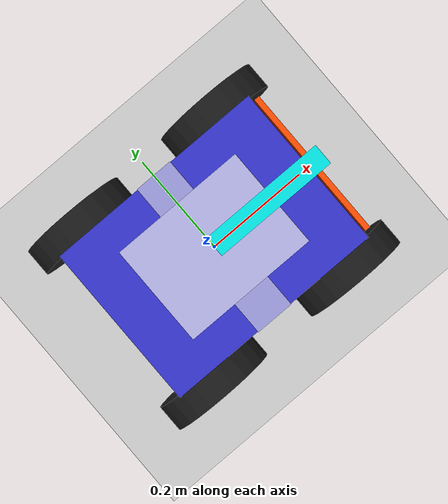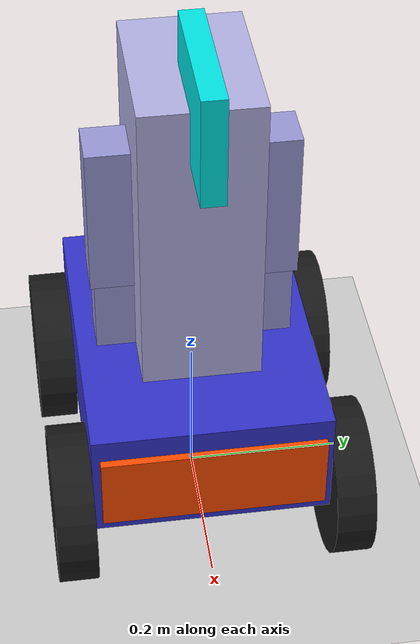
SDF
<?xml version="1.0" ?>
<sdf version="1.8">
  <world name="demo">
    <plugin filename="gz-sim-contact-system" name="gz::sim::systems::Contact"></plugin>
    <plugin
      filename="gz-sim-physics-system"
      name="gz::sim::systems::Physics">
    </plugin>
    <plugin
      filename="gz-sim-sensors-system"
      name="gz::sim::systems::Sensors">
      <render_engine>ogre</render_engine>
    </plugin>
    <plugin
      filename="gz-sim-scene-broadcaster-system"
      name="gz::sim::systems::SceneBroadcaster">
    </plugin>
    <plugin
      filename="gz-sim-user-commands-system"
      name="gz::sim::systems::UserCommands">
    </plugin>

    <light name="sun" type="directional">
      <cast_shadows>true</cast_shadows>
      <pose>0 0 10 0 0 0</pose>
      <diffuse>0.8 0.8 0.8 1</diffuse>
      <specular>0.2 0.2 0.2 1</specular>
      <attenuation>
        <range>1000</range>
        <constant>0.9</constant>
        <linear>0.01</linear>
        <quadratic>0.001</quadratic>
      </attenuation>
      <direction>-0.5 0.1 -0.9</direction>
    </light>

    <model name="ground_plane">
      <static>true</static>
      <link name="link">
        <collision name="collision">
          <geometry>
            <plane>
              <normal>0 0 1</normal>
              <size>100 100</size>
            </plane>
          </geometry>
        </collision>
        <visual name="visual">
          <geometry>
            <plane>
              <normal>0 0 1</normal>
              <size>100 100</size>
            </plane>
          </geometry>
          <material>
            <ambient>0.8 0.8 0.8 1</ambient>
            <diffuse>0.8 0.8 0.8 1</diffuse>
            <specular>0.8 0.8 0.8 1</specular>
          </material>
        </visual>
      </link>
    </model>

    <model name="diff_drive">
      <self_collide>false</self_collide>
      <pose>0 0 0 0 0 0</pose>
      <include merge="true">
        <uri>package://ros_gz_example_description/models/diff_drive</uri>
      </include>

      <plugin
        filename="gz-sim-joint-state-publisher-system"
        name="gz::sim::systems::JointStatePublisher">
      </plugin>

      <plugin
        filename="gz-sim-pose-publisher-system"
        name="gz::sim::systems::PosePublisher">
        <publish_link_pose>true</publish_link_pose>
        <use_pose_vector_msg>true</use_pose_vector_msg>
        <static_publisher>true</static_publisher>
        <static_update_frequency>1</static_update_frequency>
      </plugin>

      <plugin
        filename="gz-sim-odometry-publisher-system"
        name="gz::sim::systems::OdometryPublisher">
        <odom_frame>diff_drive/odom</odom_frame>
        <robot_base_frame>diff_drive</robot_base_frame>
      </plugin>
    </model>

  </world>
</sdf>

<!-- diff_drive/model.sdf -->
<sdf version="1.8">
  <model name="diff_drive">
  <self_collide>false</self_collide>

    <link name="chassis">
      <pose>0 0 0.175 0 0 0</pose>
      <inertial>
        <mass>5.0</mass>
        <inertia>
          <ixx>0.046875</ixx><ixy>0</ixy><ixz>0</ixz>
          <iyy>0.076041</iyy><iyz>0</iyz>
          <izz>0.104166</izz>
        </inertia>
      </inertial>
      <visual name="visual_chassis">
        <geometry><box><size>0.4 0.3 0.15</size></box></geometry>
        <material>
          <ambient>0.2 0.2 0.8 1</ambient>
          <diffuse>0.2 0.2 0.8 1</diffuse>
          <specular>0.3 0.3 0.3 1</specular>
        </material>
      </visual>
      <collision name="collision_chassis">
        <geometry><box><size>0.4 0.3 0.15</size></box></geometry>
        <surface>
          <friction><ode><mu>0.6</mu><mu2>0.6</mu2></ode></friction>
          <contact><ode><min_depth>0.001</min_depth></ode></contact>
        </surface>
      </collision>
      <sensor name="bumper_contact" type="contact">
        <always_on>true</always_on>
        <update_rate>10</update_rate>
        <topic>bumper/contact</topic>
        <contact><collision>collision_chassis</collision></contact>
      </sensor>
    </link>

    <link name="front_left_wheel">
      <pose relative_to="chassis">0.15 0.175 -0.075 -1.5708 0 0</pose>
      <inertial>
        <mass>0.5</mass>
        <inertia>
          <ixx>0.00219</ixx><ixy>0</ixy><ixz>0</ixz>
          <iyy>0.00219</iyy><iyz>0</iyz>
          <izz>0.00250</izz>
        </inertia>
      </inertial>
      <visual name="visual">
        <geometry><cylinder><radius>0.1</radius><length>0.05</length></cylinder></geometry>
        <material><ambient>0.1 0.1 0.1 1</ambient><diffuse>0.1 0.1 0.1 1</diffuse></material>
      </visual>
      <collision name="collision">
        <geometry><cylinder><radius>0.1</radius><length>0.05</length></cylinder></geometry>
        <surface>
          <friction><ode><mu>1.0</mu><mu2>0.7</mu2></ode></friction>
          <contact><ode><min_depth>0.001</min_depth><kp>1e6</kp><kd>100</kd></ode></contact>
        </surface>
      </collision>
    </link>
    <joint name="front_left_wheel_joint" type="revolute">
      <pose relative_to="front_left_wheel"/>
      <parent>chassis</parent><child>front_left_wheel</child>
      <axis>
        <xyz expressed_in="__model__">0 1 0</xyz>
        <limit><lower>-1.79769e+308</lower><upper>1.79769e+308</upper><effort>15.0</effort><velocity>10.0</velocity></limit>
        <dynamics><damping>0.1</damping><friction>0.02</friction></dynamics>
      </axis>
    </joint>

    <link name="front_right_wheel">
      <pose relative_to="chassis">0.15 -0.175 -0.075 -1.5708 0 0</pose>
      <inertial><mass>0.5</mass><inertia><ixx>0.00219</ixx><ixy>0</ixy><ixz>0</ixz><iyy>0.00219</iyy><iyz>0</iyz><izz>0.00250</izz></inertia></inertial>
      <visual name="visual"><geometry><cylinder><radius>0.1</radius><length>0.05</length></cylinder></geometry><material><ambient>0.1 0.1 0.1 1</ambient><diffuse>0.1 0.1 0.1 1</diffuse></material></visual>
      <collision name="collision"><geometry><cylinder><radius>0.1</radius><length>0.05</length></cylinder></geometry><surface><friction><ode><mu>1.0</mu><mu2>0.7</mu2></ode></friction><contact><ode><min_depth>0.001</min_depth><kp>1e6</kp><kd>100</kd></ode></contact></surface></collision>
    </link>
    <joint name="front_right_wheel_joint" type="revolute">
      <pose relative_to="front_right_wheel"/><parent>chassis</parent><child>front_right_wheel</child>
      <axis><xyz expressed_in="__model__">0 1 0</xyz><limit><lower>-1.79769e+308</lower><upper>1.79769e+308</upper><effort>15.0</effort><velocity>10.0</velocity></limit><dynamics><damping>0.1</damping><friction>0.02</friction></dynamics></axis>
    </joint>

    <link name="rear_left_wheel">
      <pose relative_to="chassis">-0.15 0.175 -0.075 -1.5708 0 0</pose>
      <inertial><mass>0.5</mass><inertia><ixx>0.00219</ixx><ixy>0</ixy><ixz>0</ixz><iyy>0.00219</iyy><iyz>0</iyz><izz>0.00250</izz></inertia></inertial>
      <visual name="visual"><geometry><cylinder><radius>0.1</radius><length>0.05</length></cylinder></geometry><material><ambient>0.1 0.1 0.1 1</ambient><diffuse>0.1 0.1 0.1 1</diffuse></material></visual>
      <collision name="collision"><geometry><cylinder><radius>0.1</radius><length>0.05</length></cylinder></geometry><surface><friction><ode><mu>1.0</mu><mu2>0.7</mu2></ode></friction><contact><ode><min_depth>0.001</min_depth><kp>1e6</kp><kd>100</kd></ode></contact></surface></collision>
    </link>
    <joint name="rear_left_wheel_joint" type="revolute">
      <pose relative_to="rear_left_wheel"/><parent>chassis</parent><child>rear_left_wheel</child>
      <axis><xyz expressed_in="__model__">0 1 0</xyz><limit><lower>-1.79769e+308</lower><upper>1.79769e+308</upper><effort>15.0</effort><velocity>10.0</velocity></limit><dynamics><damping>0.1</damping><friction>0.02</friction></dynamics></axis>
    </joint>

    <link name="rear_right_wheel">
      <pose relative_to="chassis">-0.15 -0.175 -0.075 -1.5708 0 0</pose>
      <inertial><mass>0.5</mass><inertia><ixx>0.00219</ixx><ixy>0</ixy><ixz>0</ixz><iyy>0.00219</iyy><iyz>0</iyz><izz>0.00250</izz></inertia></inertial>
      <visual name="visual"><geometry><cylinder><radius>0.1</radius><length>0.05</length></cylinder></geometry><material><ambient>0.1 0.1 0.1 1</ambient><diffuse>0.1 0.1 0.1 1</diffuse></material></visual>
      <collision name="collision"><geometry><cylinder><radius>0.1</radius><length>0.05</length></cylinder></geometry><surface><friction><ode><mu>1.0</mu><mu2>0.7</mu2></ode></friction><contact><ode><min_depth>0.001</min_depth><kp>1e6</kp><kd>100</kd></ode></contact></surface></collision>
    </link>
    <joint name="rear_right_wheel_joint" type="revolute">
      <pose relative_to="rear_right_wheel"/><parent>chassis</parent><child>rear_right_wheel</child>
      <axis><xyz expressed_in="__model__">0 1 0</xyz><limit><lower>-1.79769e+308</lower><upper>1.79769e+308</upper><effort>15.0</effort><velocity>10.0</velocity></limit><dynamics><damping>0.1</damping><friction>0.02</friction></dynamics></axis>
    </joint>

    <!-- TORSO -->
    <link name="torso">
      <pose relative_to="chassis">0.0 0.0 0.275 0 0 0</pose>
      <inertial><mass>3.0</mass><inertia><ixx>0.045625</ixx><ixy>0</ixy><ixz>0</ixz><iyy>0.050000</iyy><iyz>0</iyz><izz>0.015625</izz></inertia></inertial>
      <visual name="torso_visual">
        <geometry><box><size>0.20 0.15 0.40</size></box></geometry>
        <material><ambient>0.7 0.7 0.9 1</ambient><diffuse>0.7 0.7 0.9 1</diffuse><specular>0.3 0.3 0.3 1</specular></material>
      </visual>
      <collision name="torso_collision">
        <geometry><box><size>0.20 0.15 0.40</size></box></geometry>
        <surface><friction><ode><mu>0.6</mu><mu2>0.6</mu2></ode></friction></surface>
      </collision>
      <sensor name="rgbd_camera" type="rgbd_camera">
        <pose>0.11 0 0.05 0 0 0</pose>
        <always_on>true</always_on>
        <update_rate>30</update_rate>
        <topic>rgbd_camera</topic>
        <camera name="rgbd">
          <horizontal_fov>1.0472</horizontal_fov>
          <image><width>640</width><height>480</height><format>R8G8B8</format></image>
          <clip><near>0.1</near><far>10.0</far></clip>
        </camera>
      </sensor>
    </link>
    <joint name="torso_joint" type="fixed"><parent>chassis</parent><child>torso</child></joint>

    <!-- IMU -->
    <link name="imu_link">
      <pose relative_to="chassis">0 0 0.01 0 0 0</pose>
      <inertial><mass>0.01</mass><inertia><ixx>0.0000001</ixx><ixy>0</ixy><ixz>0</ixz><iyy>0.0000001</iyy><iyz>0</iyz><izz>0.0000001</izz></inertia></inertial>
      <sensor name="imu_sensor" type="imu">
        <always_on>true</always_on><update_rate>100</update_rate><topic>imu</topic>
        <imu>
          <angular_velocity>
            <x><noise type="gaussian"><mean>0</mean><stddev>0.009</stddev></noise></x>
            <y><noise type="gaussian"><mean>0</mean><stddev>0.009</stddev></noise></y>
            <z><noise type="gaussian"><mean>0</mean><stddev>0.009</stddev></noise></z>
          </angular_velocity>
          <linear_acceleration>
            <x><noise type="gaussian"><mean>0</mean><stddev>0.021</stddev></noise></x>
            <y><noise type="gaussian"><mean>0</mean><stddev>0.021</stddev></noise></y>
            <z><noise type="gaussian"><mean>0</mean><stddev>0.021</stddev></noise></z>
          </linear_acceleration>
        </imu>
      </sensor>
    </link>
    <joint name="imu_joint" type="fixed"><parent>chassis</parent><child>imu_link</child></joint>

    <!-- BUMPER -->
    <link name="bumper_link">
      <pose relative_to="chassis">0.21 0 0 0 0 0</pose>
      <inertial><mass>0.01</mass><inertia><ixx>0.0000001</ixx><ixy>0</ixy><ixz>0</ixz><iyy>0.0000001</iyy><iyz>0</iyz><izz>0.0000001</izz></inertia></inertial>
      <collision name="bumper_collision"><geometry><box><size>0.01 0.28 0.10</size></box></geometry></collision>
      <visual name="bumper_visual"><geometry><box><size>0.01 0.28 0.10</size></box></geometry><material><ambient>1.0 0.3 0.0 1</ambient><diffuse>1.0 0.3 0.0 1</diffuse></material></visual>
    </link>
    <joint name="bumper_joint" type="fixed"><parent>chassis</parent><child>bumper_link</child></joint>

    <!-- 2D LiDAR — mounted on chassis top center -->
<link name="lidar_link">
  <pose relative_to="chassis">0 0 0.15 0 0 0</pose>
  <inertial>
    <mass>0.1</mass>
    <inertia>
      <ixx>0.000166</ixx><ixy>0</ixy><ixz>0</ixz>
      <iyy>0.000166</iyy><iyz>0</iyz>
      <izz>0.000166</izz>
    </inertia>
  </inertial>
  <visual name="visual">
    <geometry><cylinder><radius>0.05</radius><length>0.04</length></cylinder></geometry>
    <material><ambient>0.1 0.1 0.1 1</ambient><diffuse>0.1 0.1 0.1 1</diffuse></material>
  </visual>
  <sensor name="lidar" type="gpu_lidar">
    <always_on>true</always_on>
    <update_rate>10</update_rate>
    <topic>scan</topic>
    <gz_frame_id>lidar_link</gz_frame_id>
    <lidar>
      <scan>
        <horizontal>
          <samples>720</samples>
          <resolution>1</resolution>
          <min_angle>-3.14156</min_angle>
          <max_angle>3.14156</max_angle>
        </horizontal>
        <!-- WSL2/VM ogre hack: vertical section needed for gpu_lidar to publish -->
        <vertical>
          <samples>3</samples>
          <min_angle>-0.001</min_angle>
          <max_angle>0.001</max_angle>
        </vertical>
      </scan>
      <range><min>0.05</min><max>10.0</max><resolution>0.01</resolution></range>
      <noise><type>gaussian</type><mean>0.0</mean><stddev>0.01</stddev></noise>
    </lidar>
    <visualize>true</visualize>
  </sensor>
</link>
<joint name="lidar_joint" type="fixed">
  <parent>chassis</parent><child>lidar_link</child>
</joint>

    <joint name="shoulder_joint" type="revolute">
      <pose relative_to="torso">0.0 -0.10 0.10 0 0 0</pose>
      <parent>torso</parent><child>upper_arm_right</child>
      <axis>
        <xyz expressed_in="__model__">0 1 0</xyz>
        <limit><lower>-1.5708</lower><upper>1.5708</upper><effort>20</effort><velocity>1.0</velocity></limit>
        <dynamics><damping>1.0</damping><friction>0.2</friction></dynamics>
      </axis>
    </joint>

    <link name="upper_arm_right">
      <pose relative_to="shoulder_joint">0 0 -0.10 0 0 0</pose>
      <inertial><mass>0.30</mass><inertia><ixx>0.001090</ixx><ixy>0</ixy><ixz>0</ixz><iyy>0.001090</iyy><iyz>0</iyz><izz>0.000180</izz></inertia></inertial>
      <visual name="visual"><geometry><box><size>0.06 0.06 0.20</size></box></geometry><material><ambient>0.6 0.6 0.85 1</ambient><diffuse>0.6 0.6 0.85 1</diffuse></material></visual>
    </link>

    <joint name="elbow_joint" type="revolute">
      <pose relative_to="upper_arm_right">0 0 -0.10 0 0 0</pose>
      <parent>upper_arm_right</parent><child>forearm_right</child>
      <axis>
        <xyz expressed_in="__model__">0 1 0</xyz>
        <limit><lower>-2.0944</lower><upper>0.0</upper><effort>15</effort><velocity>1.0</velocity></limit>
        <dynamics><damping>0.8</damping><friction>0.15</friction></dynamics>
      </axis>
    </joint>

    <link name="forearm_right">
      <pose relative_to="elbow_joint">0 0 -0.09 0 0 0</pose>
      <inertial><mass>0.20</mass><inertia><ixx>0.000582</ixx><ixy>0</ixy><ixz>0</ixz><iyy>0.000582</iyy><iyz>0</iyz><izz>0.000083</izz></inertia></inertial>
      <visual name="visual"><geometry><box><size>0.05 0.05 0.18</size></box></geometry><material><ambient>0.6 0.6 0.85 1</ambient><diffuse>0.6 0.6 0.85 1</diffuse></material></visual>
    </link>

    <joint name="wrist_joint" type="revolute">
      <pose relative_to="forearm_right">0 0 -0.09 0 0 0</pose>
      <parent>forearm_right</parent><child>wrist_right</child>
      <axis>
        <xyz expressed_in="__model__">0 1 0</xyz>
        <limit><lower>-1.5708</lower><upper>1.5708</upper><effort>10</effort><velocity>1.0</velocity></limit>
        <dynamics><damping>0.5</damping><friction>0.1</friction></dynamics>
      </axis>
    </joint>

    <link name="wrist_right">
      <pose relative_to="wrist_joint">0 0 -0.05 0 0 0</pose>
      <inertial><mass>0.10</mass><inertia><ixx>0.000104</ixx><ixy>0</ixy><ixz>0</ixz><iyy>0.000104</iyy><iyz>0</iyz><izz>0.000042</izz></inertia></inertial>
      <visual name="visual"><geometry><box><size>0.05 0.05 0.10</size></box></geometry><material><ambient>0.5 0.5 0.75 1</ambient><diffuse>0.5 0.5 0.75 1</diffuse></material></visual>
    </link>

    <!-- GRIPPER — collision KEPT per spec -->
    <joint name="gripper_base_joint" type="fixed">
      <pose relative_to="wrist_right">0 0 -0.05 0 0 0</pose>
      <parent>wrist_right</parent><child>gripper_base</child>
    </joint>
    <link name="gripper_base">
      <pose relative_to="gripper_base_joint">0 0 -0.015 0 0 0</pose>
      <inertial><mass>0.08</mass><inertia><ixx>0.0000487</ixx><ixy>0</ixy><ixz>0</ixz><iyy>0.0000727</iyy><iyz>0</iyz><izz>0.0001093</izz></inertia></inertial>
      <visual name="visual"><geometry><box><size>0.10 0.08 0.03</size></box></geometry><material><ambient>0.9 0.6 0.1 1</ambient><diffuse>0.9 0.6 0.1 1</diffuse></material></visual>
      <collision name="collision"><geometry><box><size>0.10 0.08 0.03</size></box></geometry></collision>
    </link>

    <joint name="left_finger_joint" type="prismatic">
      <pose relative_to="gripper_base">0 0.02 -0.03 0 0 0</pose>
      <parent>gripper_base</parent><child>left_finger</child>
      <axis><xyz expressed_in="__model__">0 1 0</xyz><limit><lower>0</lower><upper>0.04</upper><effort>5</effort><velocity>0.5</velocity></limit><dynamics><damping>0.3</damping><friction>0.05</friction></dynamics></axis>
    </joint>
    <link name="left_finger">
      <pose relative_to="left_finger_joint">0 0 0 0 0 0</pose>
      <inertial><mass>0.02</mass><inertia><ixx>0.00000624</ixx><ixy>0</ixy><ixz>0</ixz><iyy>0.00000624</iyy><iyz>0</iyz><izz>0.00000062</izz></inertia></inertial>
      <visual name="visual"><geometry><box><size>0.015 0.012 0.06</size></box></geometry><material><ambient>0.9 0.6 0.1 1</ambient><diffuse>0.9 0.6 0.1 1</diffuse></material></visual>
      <collision name="collision"><geometry><box><size>0.015 0.012 0.06</size></box></geometry><surface><friction><ode><mu>1.2</mu><mu2>1.2</mu2></ode></friction><contact><ode><min_depth>0.0005</min_depth></ode></contact></surface></collision>
    </link>

    <joint name="right_finger_joint" type="prismatic">
      <pose relative_to="gripper_base">0 -0.02 -0.03 0 0 0</pose>
      <parent>gripper_base</parent><child>right_finger</child>
      <axis><xyz expressed_in="__model__">0 -1 0</xyz><limit><lower>0</lower><upper>0.04</upper><effort>5</effort><velocity>0.5</velocity></limit><dynamics><damping>0.3</damping><friction>0.05</friction></dynamics></axis>
    </joint>
    <link name="right_finger">
      <pose relative_to="right_finger_joint">0 0 0 0 0 0</pose>
      <inertial><mass>0.02</mass><inertia><ixx>0.00000624</ixx><ixy>0</ixy><ixz>0</ixz><iyy>0.00000624</iyy><iyz>0</iyz><izz>0.00000062</izz></inertia></inertial>
      <visual name="visual"><geometry><box><size>0.015 0.012 0.06</size></box></geometry><material><ambient>0.9 0.6 0.1 1</ambient><diffuse>0.9 0.6 0.1 1</diffuse></material></visual>
      <collision name="collision"><geometry><box><size>0.015 0.012 0.06</size></box></geometry><surface><friction><ode><mu>1.2</mu><mu2>1.2</mu2></ode></friction><contact><ode><min_depth>0.0005</min_depth></ode></contact></surface></collision>
    </link>

    <joint name="shoulder_joint_left" type="fixed">
      <pose relative_to="torso">0.0 0.10 0.10 0 0 0</pose>
      <parent>torso</parent><child>upper_arm_left</child>
    </joint>
    <link name="upper_arm_left">
      <pose relative_to="shoulder_joint_left">0 0 -0.10 0 0 0</pose>
      <inertial><mass>0.30</mass><inertia><ixx>0.001090</ixx><ixy>0</ixy><ixz>0</ixz><iyy>0.001090</iyy><iyz>0</iyz><izz>0.000180</izz></inertia></inertial>
      <visual name="visual"><geometry><box><size>0.06 0.06 0.20</size></box></geometry><material><ambient>0.6 0.6 0.85 1</ambient><diffuse>0.6 0.6 0.85 1</diffuse></material></visual>
    </link>

    <joint name="elbow_joint_left" type="fixed">
      <pose relative_to="upper_arm_left">0 0 -0.10 0 0 0</pose>
      <parent>upper_arm_left</parent><child>forearm_left</child>
    </joint>
    <link name="forearm_left">
      <pose relative_to="elbow_joint_left">0 0 -0.09 0 0 0</pose>
      <inertial><mass>0.20</mass><inertia><ixx>0.000582</ixx><ixy>0</ixy><ixz>0</ixz><iyy>0.000582</iyy><iyz>0</iyz><izz>0.000083</izz></inertia></inertial>
      <visual name="visual"><geometry><box><size>0.05 0.05 0.18</size></box></geometry><material><ambient>0.6 0.6 0.85 1</ambient><diffuse>0.6 0.6 0.85 1</diffuse></material></visual>
    </link>

    <joint name="wrist_joint_left" type="fixed">
      <pose relative_to="forearm_left">0 0 -0.09 0 0 0</pose>
      <parent>forearm_left</parent><child>wrist_left</child>
    </joint>
    <link name="wrist_left">
      <pose relative_to="wrist_joint_left">0 0 -0.05 0 0 0</pose>
      <inertial><mass>0.10</mass><inertia><ixx>0.000104</ixx><ixy>0</ixy><ixz>0</ixz><iyy>0.000104</iyy><iyz>0</iyz><izz>0.000042</izz></inertia></inertial>
      <visual name="visual"><geometry><box><size>0.05 0.05 0.10</size></box></geometry><material><ambient>0.5 0.5 0.75 1</ambient><diffuse>0.5 0.5 0.75 1</diffuse></material></visual>
    </link>

    <!-- FACE PANEL (visual only) -->
    <joint name="face_panel_joint" type="fixed">
      <pose relative_to="torso">0.09 0 0.13 0 0 0</pose>
      <parent>torso</parent><child>face_panel</child>
    </joint>
    <link name="face_panel">
      <pose relative_to="face_panel_joint">0 0 0.07 0 0 0</pose>
      <inertial><mass>0.05</mass><inertia><ixx>0.0000324</ixx><ixy>0</ixy><ixz>0</ixz><iyy>0.0000433</iyy><iyz>0</iyz><izz>0.0000189</izz></inertia></inertial>
      <visual name="face_visual">
        <geometry><box><size>0.18 0.03 0.14</size></box></geometry>
        <material><ambient>0.0 1.0 1.0 1</ambient><diffuse>0.0 0.9 0.9 1</diffuse><specular>0.8 0.8 0.8 1</specular><emissive>0.0 0.4 0.4 1</emissive></material>
      </visual>
    </link>

    <!-- PLUGINS -->

    <plugin filename="gz-sim-diff-drive-system" name="gz::sim::systems::DiffDrive">
      <left_joint>front_left_wheel_joint</left_joint>
      <left_joint>rear_left_wheel_joint</left_joint>
      <right_joint>front_right_wheel_joint</right_joint>
      <right_joint>rear_right_wheel_joint</right_joint>
      <wheel_separation>0.35</wheel_separation>
      <wheel_radius>0.1</wheel_radius>
      <odom_publish_frequency>50</odom_publish_frequency>
      <max_linear_velocity>0.5</max_linear_velocity>
      <min_linear_velocity>-0.5</min_linear_velocity>
      <max_angular_velocity>1.0</max_angular_velocity>
      <min_angular_velocity>-1.0</min_angular_velocity>
      <max_linear_acceleration>1.0</max_linear_acceleration>
      <min_linear_acceleration>-1.0</min_linear_acceleration>
      <max_angular_acceleration>2.0</max_angular_acceleration>
      <min_angular_acceleration>-2.0</min_angular_acceleration>
      <topic>/model/diff_drive/cmd_vel</topic>
      <odom_topic>odometry</odom_topic>
      <frame_id>odom</frame_id>
      <child_frame_id>chassis</child_frame_id>
    </plugin>

    <plugin filename="gz-sim-joint-position-controller-system" name="gz::sim::systems::JointPositionController">
      <joint_name>shoulder_joint</joint_name>
      <topic>/model/diff_drive/joint/shoulder_joint/cmd_pos</topic>
      <p_gain>10</p_gain><i_gain>0.01</i_gain><d_gain>0.1</d_gain>
    </plugin>

    <plugin filename="gz-sim-joint-position-controller-system" name="gz::sim::systems::JointPositionController">
      <joint_name>elbow_joint</joint_name>
      <topic>/model/diff_drive/joint/elbow_joint/cmd_pos</topic>
      <p_gain>10</p_gain><i_gain>0.01</i_gain><d_gain>0.1</d_gain>
    </plugin>

    <plugin filename="gz-sim-joint-position-controller-system" name="gz::sim::systems::JointPositionController">
      <joint_name>wrist_joint</joint_name>
      <topic>/model/diff_drive/joint/wrist_joint/cmd_pos</topic>
      <p_gain>5</p_gain><i_gain>0.01</i_gain><d_gain>0.05</d_gain>
    </plugin>
    <plugin filename="gz-sim-joint-position-controller-system" name="gz::sim::systems::JointPositionController">
      <joint_name>left_finger_joint</joint_name>
      <topic>/model/diff_drive/joint/left_finger_joint/cmd_pos</topic>
      <p_gain>50</p_gain><i_gain>0.01</i_gain><d_gain>1.0</d_gain>
    </plugin>

    <plugin filename="gz-sim-joint-position-controller-system" name="gz::sim::systems::JointPositionController">
      <joint_name>right_finger_joint</joint_name>
      <topic>/model/diff_drive/joint/right_finger_joint/cmd_pos</topic>
      <p_gain>50</p_gain><i_gain>0.01</i_gain><d_gain>1.0</d_gain>
    </plugin>

    <plugin filename="gz-sim-joint-state-publisher-system" name="gz::sim::systems::JointStatePublisher">
      <topic>joint_states</topic>
    </plugin>

    <!-- Publishes link poses as TF frames to ROS via ros_gz_bridge (/model/diff_drive/pose) -->

  </model>
</sdf>
